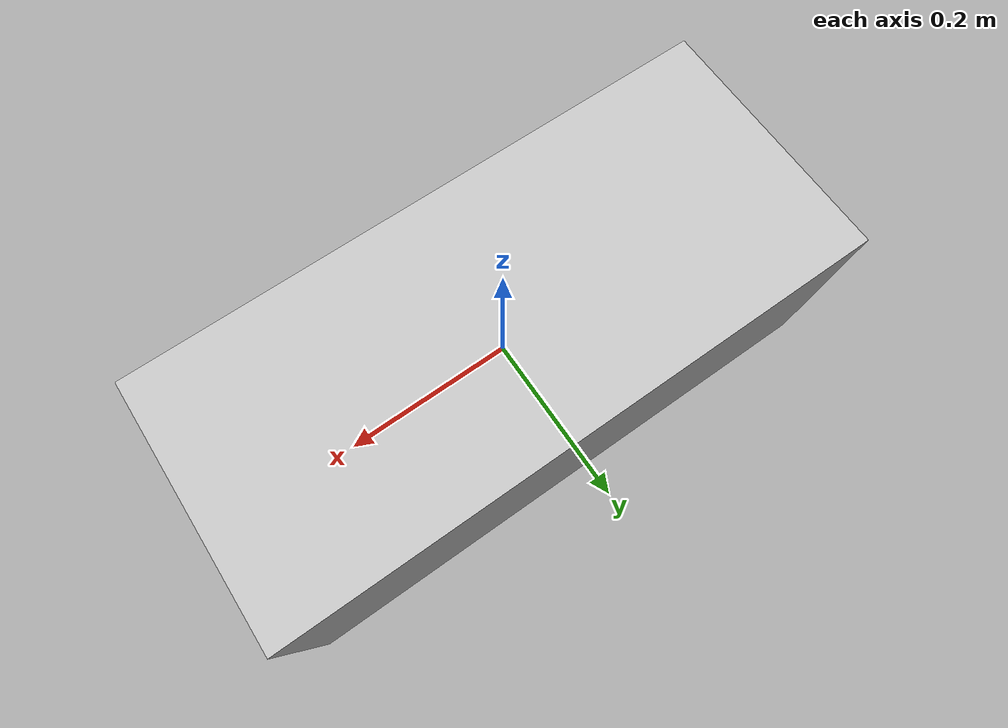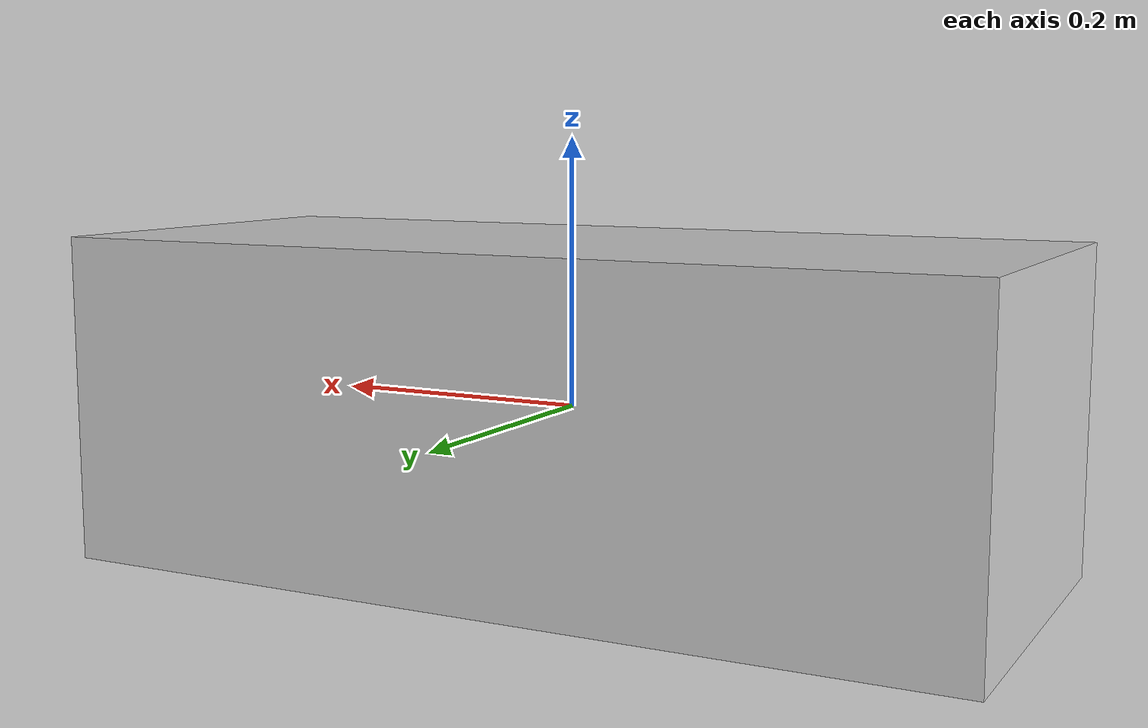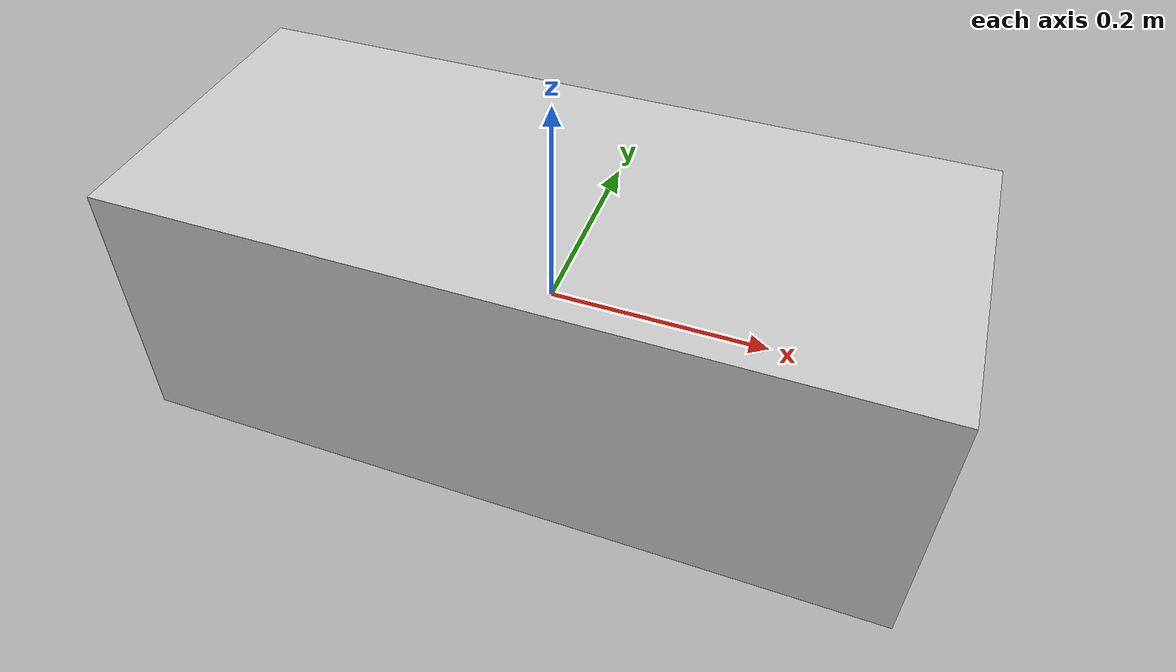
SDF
<?xml version="1.0"?>
<sdf version="1.6">
  <model name="greenhouse_robot">
    <!-- Robot's body -->
    <link name="base_link">
      <collision name="collision">
        <geometry>
          <box>
            <size>0.7 0.3 0.25</size> <!-- Robot size: 70x30x25cm -->
          </box>
        </geometry>
      </collision>
      <visual name="visual">
        <geometry>
          <box>
            <size>0.7 0.3 0.25</size>
          </box>
        </geometry>
        <material>
          <ambient>0.8 0.8 0.8 1</ambient> <!-- Light grey material -->
        </material>
      </visual>
    </link>

    <!-- Wheels -->
    <!-- Assuming a special wheel design for driven wheels -->
    <link name="front_left_wheel">
      <collision name="collision">
        <geometry>
          <mesh>
            <uri>model://robot_model/meshes/front_left_wheel.obj</uri> <!-- Your custom wheel mesh -->
          </mesh>
        </geometry>
      </collision>
      <visual name="visual">
        <geometry>
          <mesh>
            <uri>model://robot_model/meshes/front_left_wheel.obj</uri>
          </mesh>
        </geometry>
      </visual>
      <joint name="front_left_wheel_joint" type="revolute">
        <parent>base_link</parent>
        <child>front_left_wheel</child>
        <axis>
          <xyz>0 0 1</xyz>
        </axis>
        <limit>
          <lower>-10</lower>
          <upper>10</upper>
        </limit>
        <dynamics>
          <damping>0.5</damping>
        </dynamics>
        <pose>0.35 0.15 0 0 0 0</pose> <!-- Position of the wheel -->
      </joint>
    </link>

    <!-- Other wheel and actuators (similarly for other wheels) -->

    <!-- Sensors and actuators -->
    <!-- Add any additional sensors or actuators like cameras, laser, motors, etc. -->

  </model>
</sdf>
